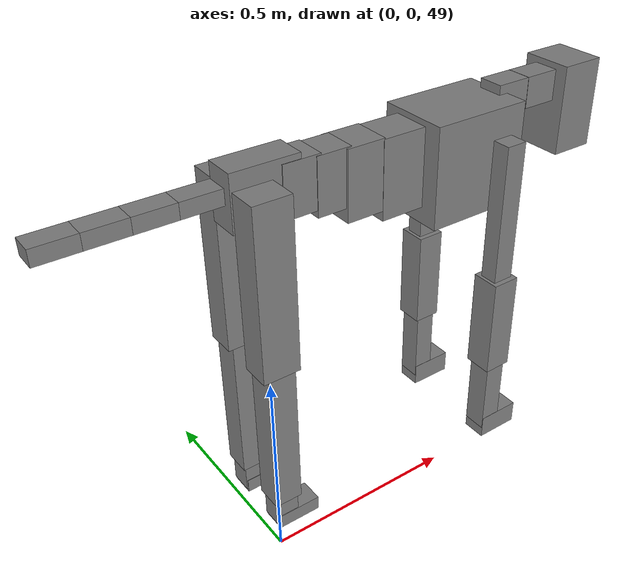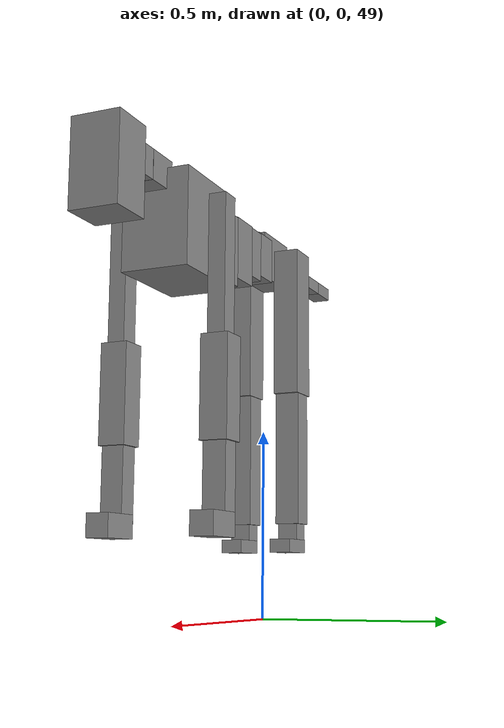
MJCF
<mujoco model="dog">

    <default>
        <joint armature="0.02" stiffness="1" damping="0.2" limited="true"/>
        <geom condim="3" friction="1 0.05 0.05" margin="0.01"/>
        <motor ctrllimited="true" ctrlrange="-1.0 1.0" forcelimited="true" gear="50"/>
    </default>

    <compiler inertiafromgeom="true" angle="radian"/>

    <option timestep="0.016" iterations="50" tolerance="1e-10" solver="Newton" jacobian="dense" cone="pyramidal"/>

    <size nconmax="20000" njmax="60000" nstack="5000000"/>
    <visual>
        <map force="0.1" zfar="30"/>
        <rgba haze="0.15 0.25 0.35 1"/>
        <quality shadowsize="2048"/>
        <global offwidth="800" offheight="800"/>
    </visual>

    <asset>
        <texture type="skybox" builtin="gradient" rgb1="0.3 0.5 0.7" rgb2="0 0 0" width="512" height="512"/>
        <texture name="texplane" type="2d" builtin="checker" rgb1=".2 .3 .4" rgb2=".1 0.15 0.2" width="512" height="512"
                 mark="cross" markrgb=".8 .8 .8"/>
        <texture name="texgeom" type="cube" builtin="flat" mark="cross" width="127" height="1278" rgb1="0.8 0.6 0.4"
                 rgb2="0.8 0.6 0.4" markrgb="1 1 1" random="0.01"/>

        <material name="matplane" reflectance="0.3" texture="texplane" texrepeat="1 1" texuniform="true"/>
        <material name="matgeom" texture="texgeom" texuniform="true" rgba="0.8 0.6 .4 1"/>
    </asset>

    <worldbody>
        <geom name="floor" pos="0 0 0" size="0 0 .25" type="plane" material="matplane" condim="3"/>

        <light directional="false" diffuse=".2 .2 .2" specular="0 0 0" pos="0 0 5" dir="0 0 -1" castshadow="false"/>
        <light mode="targetbodycom" target="torso" directional="false" diffuse=".8 .8 .8" specular="0.3 0.3 0.3"
               pos="0 0 4.0" dir="0 0 -1"/>

        <body name="root" pos="0 0 50">
            <freejoint name="root_1"/>
            <geom type="box" pos="0 0 -0.02" size="0.0774  0.0358  0.063" density="2030"/>

            <body name="spine1" pos="0.054 0 0">
                <joint name="spine1_y" axis="0 1 0" range="0 0.7" limited="true"/>
                <geom type="box" pos="0.02375 0 -0.03" size="0.04375  0.0375  0.05985" density="2030"/>

                <body name="spine2" pos="0.0612 0 0">
                    <joint name="spine2_y" axis="0 1 0" range="-0.15 0.15" limited="true"/>
                    <geom type="box" pos="0.03555  0  -0.04" size="0.04055  0.039  0.06615" density="2030"/>

                    <body name="spine3" pos="0.0730 0 0">
                        <joint name="spine3_y" axis="0 1 0" range="-0.15 0.15" limited="true"/>
                        <geom type="box" pos="0.03555  0  -0.057" size="0.04555  0.0445  0.081" density="2030"/>

                        <body name="spine4" pos="0.0780 0 0">
                            <joint name="spine4_y" axis="0 1 0" range="-0.15 0.15" limited="true"/>
                            <geom type="box" pos="0.05265  0  -0.07" size="0.05265  0.045  0.09135" density="2030"/>

                            <body name="torso" pos="0.1082 0 0">
                                <joint name="torso_y" axis="0 1 0" range="-0.15 0.15" limited="true"/>
                                <geom type="box" pos="0.11925  0  -0.085" size="0.11925  0.085  0.11745"
                                      density="2030"/>

                                <body name="neck1" pos="0.2160  0   0.0180">
                                    <joint name="neck1_y" axis="0 1 0" range="-1.2  -1" limited="true"/>
                                    <geom type="box" pos="0.0423  0  0" size="0.0423  0.03  0.036" density="2325"/>

                                    <body name="neck2" pos="0.0853  0  0">
                                        <joint name="neck2_y" axis="0 1 0" range="0.1  0" limited="true"/>
                                        <geom type="box" pos="0.0423  0  0" size="0.0423  0.03  0.036" density="2325"/>

                                        <body name="head" pos="0.0853  0  0">
                                            <joint name="head_y" axis="0 1 0" range="-0.3  -0.2" limited="true"/>
                                            <geom type="box" pos="0.0531  0  -0.055" size="0.0531  0.06  0.1044"
                                                  density="4030"/>

                                        </body>
                                    </body>
                                </body>

                                <body name="front_shoulder" pos="0.156  0   -0.0480">
                                    <joint name="front_shoulder_y" axis="0 1 0" range="-1 1.5" limited="true"/>
                                    <geom type="box" pos="0 0.13 -0.1517" size="0.0250  0.0214  0.1783" density="1158"/>
                                    <geom type="box" pos="0 -0.13 -0.1517" size="0.0250  0.0214  0.1783"
                                          density="1158"/>

                                    <body name="front_elbow" pos="0  0  -0.3033">
                                        <joint name="front_elbow_y" axis="0 1 0" range="-2 0" limited="true"/>
                                        <geom type="box" pos="0 0.13 -0.1208" size="0.0332  0.0339  0.1208"
                                              density="1081"/>
                                        <geom type="box" pos="0 -0.13 -0.1208" size="0.0332  0.0339  0.1208"
                                              density="1081"/>

                                        <body name="front_wrist" pos="0  0  -0.2416">
                                            <joint name="front_wrist_y" axis="0 1 0" range="-0.2 0" limited="true"/>
                                            <geom type="box" pos="0 0.13 -0.0857" size="0.0253  0.0281  0.0988"
                                                  density="1664"/>
                                            <geom type="box" pos="0 -0.13 -0.0857" size="0.0253  0.0281  0.0988"
                                                  density="1664"/>

                                            <body name="front_finger_end" pos="0  0  -0.1713">
                                                <joint name="front_finger_y" axis="0 1 0" range="-0.4 1"
                                                       limited="true"/>
                                                <geom type="box" pos="0.0287  0.13  -0.0130"
                                                      size="0.0526  0.0287  0.0280" density="1515"/>
                                                <geom type="box" pos="0.0287  -0.13  -0.0130"
                                                      size="0.0526  0.0287  0.0280" density="1515"/>

                                            </body>

                                        </body>
                                    </body>
                                </body>

                            </body>
                        </body>
                    </body>
                </body>
            </body>

            <body name="back_hip" pos="-0.03 0 -0.018">
                <joint name="back_hip_y" axis="0 1 0" range="-1.5 0.3" limited="true"/>
                <geom type="box" pos="0 0.07 -0.1776" size="0.0437  0.0343  0.2004" density="1154"/>
                <geom type="box" pos="0 -0.07 -0.1776" size="0.0437  0.0343  0.2004" density="1154"/>

                <body name="back_knee" pos="0  0  -0.3553">
                    <joint name="back_knee_y" axis="0 1 0" range="0 2.8" limited="true"/>
                    <geom type="box" pos="0 0.07 -0.1798" size="0.0328  0.0323  0.1953" density="1227"/>
                    <geom type="box" pos="0 -0.07 -0.1798" size="0.0328  0.0323  0.1953" density="1227"/>

                    <body name="back_ankle" pos="0  0  -0.3596">
                        <joint name="back_ankle_y" axis="0 1 0" range="-2.2 0" limited="true"/>
                        <geom type="box" pos="0 0.07 -0.0362" size="0.0265  0.0265  0.0475" density="1284"/>
                        <geom type="box" pos="0 -0.07 -0.0362" size="0.0265  0.0265  0.0475" density="1284"/>

                        <body name="back_toe_end" pos="0  0  -0.0725">
                            <joint name="back_toe_y" axis="0 1 0" range="-0.4 1" limited="true"/>
                            <geom type="box" pos="0.0283  0.07  -0.0023" size="0.0519  0.0283  0.0173" density="1515"/>
                            <geom type="box" pos="0.0283  -0.07  -0.0023" size="0.0519  0.0283  0.0173" density="1515"/>

                        </body>
                    </body>
                </body>
            </body>

            <body name="tail1" pos="-0.074 0 -0.006">
                <joint name="tail1_y" axis="0 1 0" range="-0.2 0.2" limited="true"/>
                <geom type="box" pos="-0.0536  0  0" size="0.045  0.025  0.0175" density="1587"/>

                <body name="tail2" pos="-0.09 0 0">
                    <joint name="tail2_y" axis="0 1 0" range="-0.2 0.2" limited="true"/>
                    <geom type="box" pos="-0.0536  0  0" size="0.045  0.025  0.0175" density="1587"/>

                    <body name="tail3" pos="-0.09 0 0">
                        <joint name="tail3_y" axis="0 1 0" range="-0.2 0.2" limited="true"/>
                        <geom type="box" pos="-0.0536  0  0" size="0.045  0.025  0.0175" density="1587"/>

                        <body name="tail4" pos="-0.09 0 0">
                            <joint name="tail4_y" axis="0 1 0" range="-0.2 0.2" limited="true"/>
                            <geom type="box" pos="-0.0536  0  0" size="0.045  0.025  0.0175" density="1587"/>

                        </body>
                    </body>
                </body>
            </body>
        </body>
    </worldbody>

    <actuator>
        <motor joint="spine1_y" forcerange="-150 150     "/>
        <motor joint="spine2_y" forcerange="-150 150     "/>
        <motor joint="spine3_y" forcerange="-150 150     "/>
        <motor joint="spine4_y" forcerange="-150 150     "/>
        <motor joint="torso_y" forcerange="-150 150     "/>
        <motor joint="neck1_y" forcerange="-100 100       "/>
        <motor joint="neck2_y" forcerange="-100 100       "/>
        <motor joint="head_y" forcerange="-150 150       "/>
        <motor joint="front_shoulder_y" forcerange="-133.85 108.63"/>
        <motor joint="front_elbow_y" forcerange="-158.90 187.81"/>
        <motor joint="front_wrist_y" forcerange="-129.11 95.93"/>
        <motor joint="front_finger_y" forcerange="-50.40 62.61"/>
        <motor joint="back_hip_y" forcerange="-303.70 353.40"/>
        <motor joint="back_knee_y" forcerange="-347.78 321.82"/>
        <motor joint="back_angle_y" forcerange="-205.05 118.80"/>
        <motor joint="back_toe_y" forcerange="-28.45 117.98"/>
        <motor joint="tail1_y" forcerange="-50 50     "/>
        <motor joint="tail2_y" forcerange="-50 50     "/>
        <motor joint="tail3_y" forcerange="-50 50     "/>
        <motor joint="tail4_y" forcerange="-50 50     "/>
    </actuator>
</mujoco>
